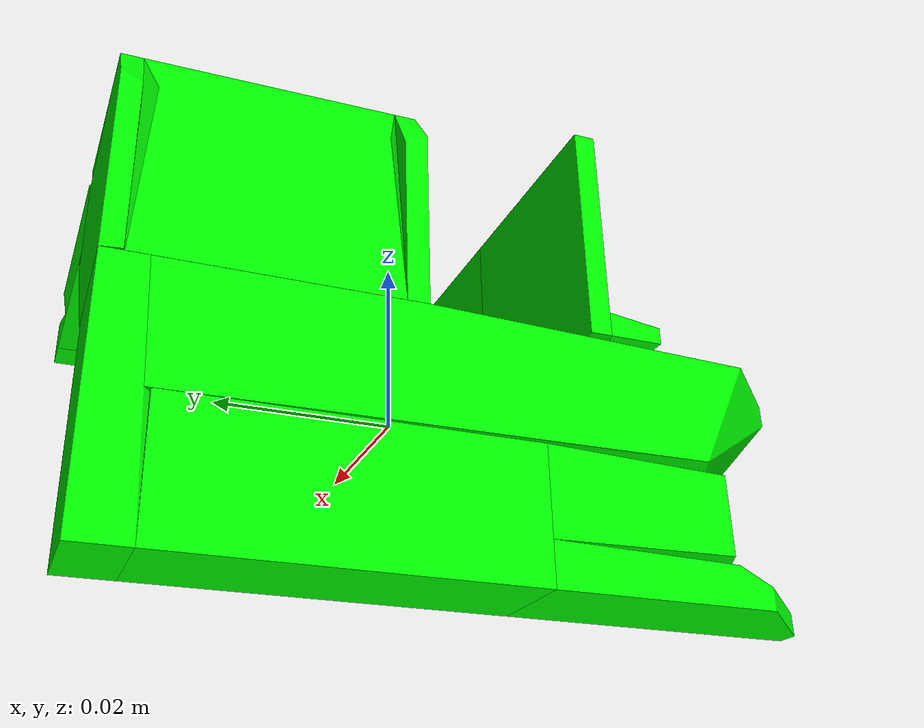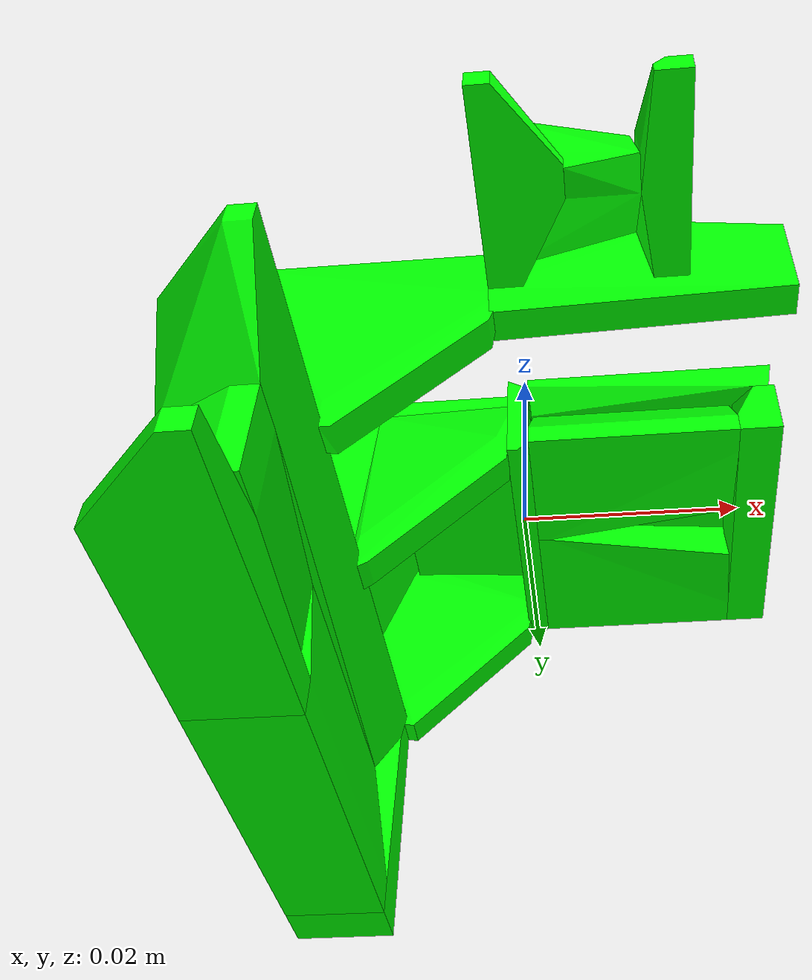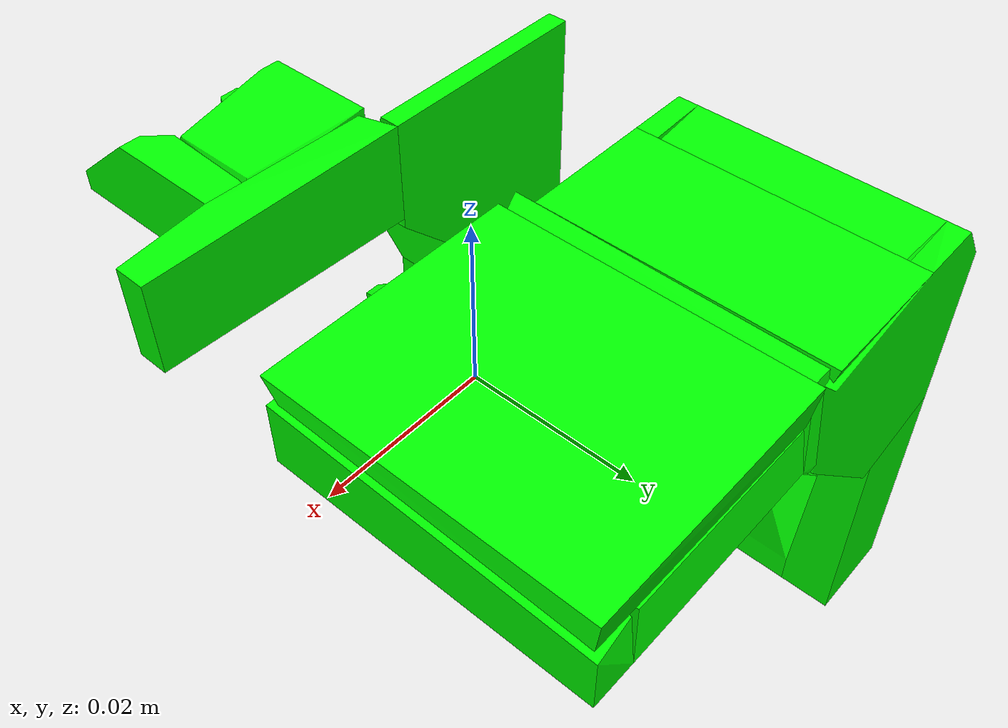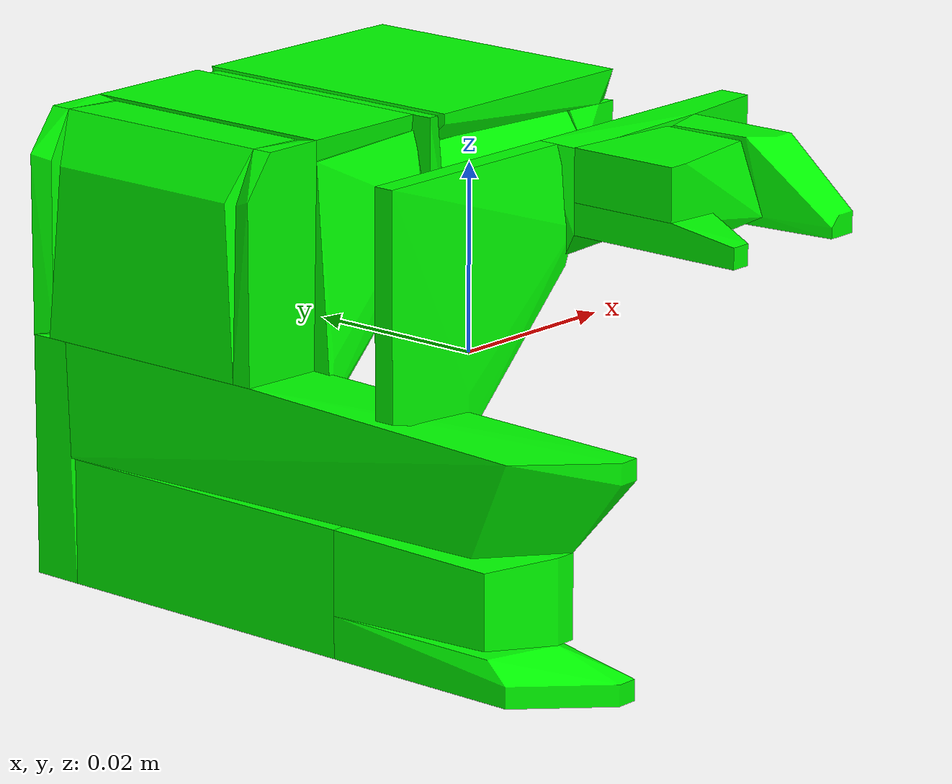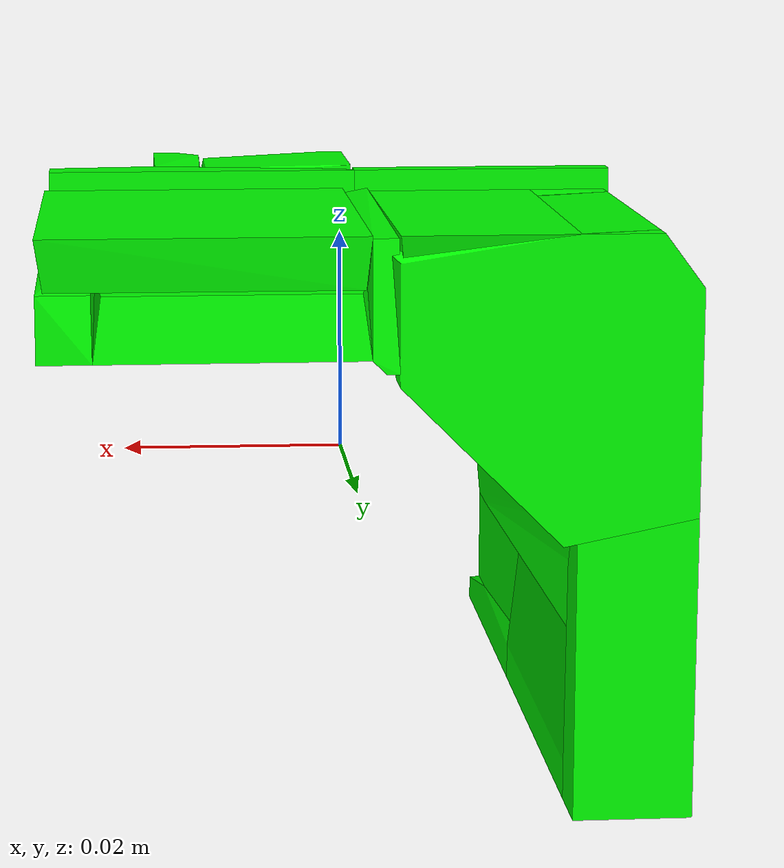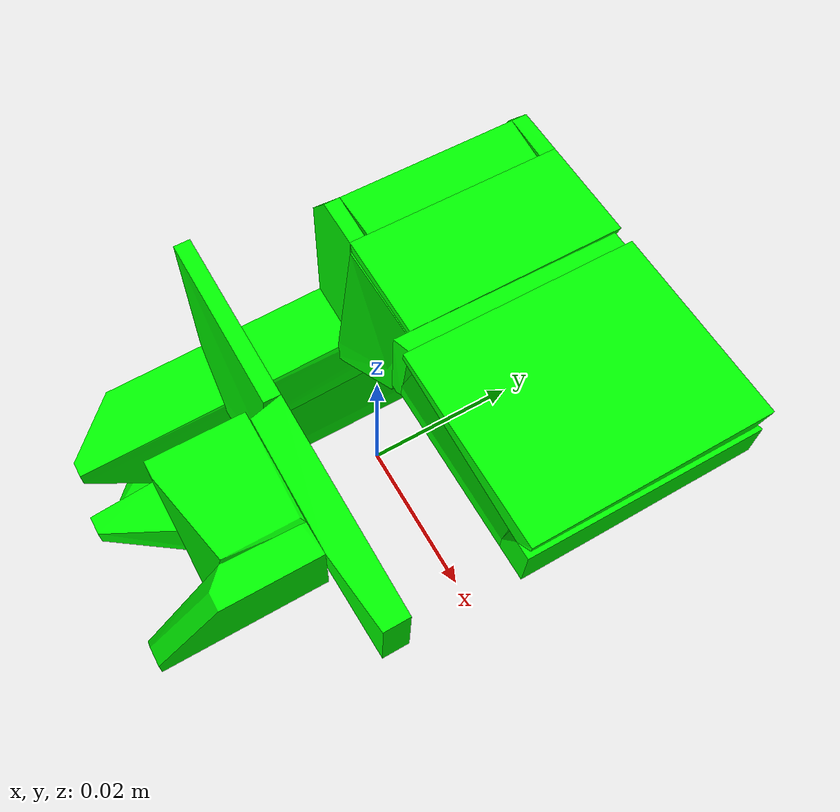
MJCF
<mujoco model="shapenet4-16">
  <asset>
    <mesh file="meshes/shapenet4-16/shapenet4-16_0.stl" name="shapenet4-16_0" scale="0.1 0.1 0.1"/>
    <mesh file="meshes/shapenet4-16/shapenet4-16_1.stl" name="shapenet4-16_1" scale="0.1 0.1 0.1"/>
    <mesh file="meshes/shapenet4-16/shapenet4-16_2.stl" name="shapenet4-16_2" scale="0.1 0.1 0.1"/>
    <mesh file="meshes/shapenet4-16/shapenet4-16_3.stl" name="shapenet4-16_3" scale="0.1 0.1 0.1"/>
    <mesh file="meshes/shapenet4-16/shapenet4-16_4.stl" name="shapenet4-16_4" scale="0.1 0.1 0.1"/>
    <mesh file="meshes/shapenet4-16/shapenet4-16_5.stl" name="shapenet4-16_5" scale="0.1 0.1 0.1"/>
    <mesh file="meshes/shapenet4-16/shapenet4-16_6.stl" name="shapenet4-16_6" scale="0.1 0.1 0.1"/>
    <mesh file="meshes/shapenet4-16/shapenet4-16_7.stl" name="shapenet4-16_7" scale="0.1 0.1 0.1"/>
    <mesh file="meshes/shapenet4-16/shapenet4-16_8.stl" name="shapenet4-16_8" scale="0.1 0.1 0.1"/>
    <mesh file="meshes/shapenet4-16/shapenet4-16_9.stl" name="shapenet4-16_9" scale="0.1 0.1 0.1"/>
    <mesh file="meshes/shapenet4-16/shapenet4-16_10.stl" name="shapenet4-16_10" scale="0.1 0.1 0.1"/>
    <mesh file="meshes/shapenet4-16/shapenet4-16_11.stl" name="shapenet4-16_11" scale="0.1 0.1 0.1"/>
    <mesh file="meshes/shapenet4-16/shapenet4-16_12.stl" name="shapenet4-16_12" scale="0.1 0.1 0.1"/>
    <mesh file="meshes/shapenet4-16/shapenet4-16_13.stl" name="shapenet4-16_13" scale="0.1 0.1 0.1"/>
    <mesh file="meshes/shapenet4-16/shapenet4-16_14.stl" name="shapenet4-16_14" scale="0.1 0.1 0.1"/>
    <mesh file="meshes/shapenet4-16/shapenet4-16_15.stl" name="shapenet4-16_15" scale="0.1 0.1 0.1"/>
    <mesh file="meshes/shapenet4-16/shapenet4-16_16.stl" name="shapenet4-16_16" scale="0.1 0.1 0.1"/>
    <mesh file="meshes/shapenet4-16/shapenet4-16_17.stl" name="shapenet4-16_17" scale="0.1 0.1 0.1"/>
    <mesh file="meshes/shapenet4-16/shapenet4-16_18.stl" name="shapenet4-16_18" scale="0.1 0.1 0.1"/>
    <mesh file="meshes/shapenet4-16/shapenet4-16_19.stl" name="shapenet4-16_19" scale="0.1 0.1 0.1"/>
  </asset>
  <worldbody>
    <body>
      <body name="collision">
        <geom pos="0 0 0" mesh="shapenet4-16_0" type="mesh" solimp="0.998 0.998 0.001" solref="0.001 1" density="100" friction="0.95 0.3 0.1" rgba="0 1 0 1" group="1" condim="4"/>
        <geom pos="0 0 0" mesh="shapenet4-16_1" type="mesh" solimp="0.998 0.998 0.001" solref="0.001 1" density="100" friction="0.95 0.3 0.1" rgba="0 1 0 1" group="1" condim="4"/>
        <geom pos="0 0 0" mesh="shapenet4-16_2" type="mesh" solimp="0.998 0.998 0.001" solref="0.001 1" density="100" friction="0.95 0.3 0.1" rgba="0 1 0 1" group="1" condim="4"/>
        <geom pos="0 0 0" mesh="shapenet4-16_3" type="mesh" solimp="0.998 0.998 0.001" solref="0.001 1" density="100" friction="0.95 0.3 0.1" rgba="0 1 0 1" group="1" condim="4"/>
        <geom pos="0 0 0" mesh="shapenet4-16_4" type="mesh" solimp="0.998 0.998 0.001" solref="0.001 1" density="100" friction="0.95 0.3 0.1" rgba="0 1 0 1" group="1" condim="4"/>
        <geom pos="0 0 0" mesh="shapenet4-16_5" type="mesh" solimp="0.998 0.998 0.001" solref="0.001 1" density="100" friction="0.95 0.3 0.1" rgba="0 1 0 1" group="1" condim="4"/>
        <geom pos="0 0 0" mesh="shapenet4-16_6" type="mesh" solimp="0.998 0.998 0.001" solref="0.001 1" density="100" friction="0.95 0.3 0.1" rgba="0 1 0 1" group="1" condim="4"/>
        <geom pos="0 0 0" mesh="shapenet4-16_7" type="mesh" solimp="0.998 0.998 0.001" solref="0.001 1" density="100" friction="0.95 0.3 0.1" rgba="0 1 0 1" group="1" condim="4"/>
        <geom pos="0 0 0" mesh="shapenet4-16_8" type="mesh" solimp="0.998 0.998 0.001" solref="0.001 1" density="100" friction="0.95 0.3 0.1" rgba="0 1 0 1" group="1" condim="4"/>
        <geom pos="0 0 0" mesh="shapenet4-16_9" type="mesh" solimp="0.998 0.998 0.001" solref="0.001 1" density="100" friction="0.95 0.3 0.1" rgba="0 1 0 1" group="1" condim="4"/>
        <geom pos="0 0 0" mesh="shapenet4-16_10" type="mesh" solimp="0.998 0.998 0.001" solref="0.001 1" density="100" friction="0.95 0.3 0.1" rgba="0 1 0 1" group="1" condim="4"/>
        <geom pos="0 0 0" mesh="shapenet4-16_11" type="mesh" solimp="0.998 0.998 0.001" solref="0.001 1" density="100" friction="0.95 0.3 0.1" rgba="0 1 0 1" group="1" condim="4"/>
        <geom pos="0 0 0" mesh="shapenet4-16_12" type="mesh" solimp="0.998 0.998 0.001" solref="0.001 1" density="100" friction="0.95 0.3 0.1" rgba="0 1 0 1" group="1" condim="4"/>
        <geom pos="0 0 0" mesh="shapenet4-16_13" type="mesh" solimp="0.998 0.998 0.001" solref="0.001 1" density="100" friction="0.95 0.3 0.1" rgba="0 1 0 1" group="1" condim="4"/>
        <geom pos="0 0 0" mesh="shapenet4-16_14" type="mesh" solimp="0.998 0.998 0.001" solref="0.001 1" density="100" friction="0.95 0.3 0.1" rgba="0 1 0 1" group="1" condim="4"/>
        <geom pos="0 0 0" mesh="shapenet4-16_15" type="mesh" solimp="0.998 0.998 0.001" solref="0.001 1" density="100" friction="0.95 0.3 0.1" rgba="0 1 0 1" group="1" condim="4"/>
        <geom pos="0 0 0" mesh="shapenet4-16_16" type="mesh" solimp="0.998 0.998 0.001" solref="0.001 1" density="100" friction="0.95 0.3 0.1" rgba="0 1 0 1" group="1" condim="4"/>
        <geom pos="0 0 0" mesh="shapenet4-16_17" type="mesh" solimp="0.998 0.998 0.001" solref="0.001 1" density="100" friction="0.95 0.3 0.1" rgba="0 1 0 1" group="1" condim="4"/>
        <geom pos="0 0 0" mesh="shapenet4-16_18" type="mesh" solimp="0.998 0.998 0.001" solref="0.001 1" density="100" friction="0.95 0.3 0.1" rgba="0 1 0 1" group="1" condim="4"/>
        <geom pos="0 0 0" mesh="shapenet4-16_19" type="mesh" solimp="0.998 0.998 0.001" solref="0.001 1" density="100" friction="0.95 0.3 0.1" rgba="0 1 0 1" group="1" condim="4"/>
      </body>
      <body name="visual">
        <geom pos="0 0 0" mesh="shapenet4-16_0" type="mesh" rgba="0 1 0 1" conaffinity="0" contype="0" group="0" mass="0.0001"/>
        <geom pos="0 0 0" mesh="shapenet4-16_1" type="mesh" rgba="0 1 0 1" conaffinity="0" contype="0" group="0" mass="0.0001"/>
        <geom pos="0 0 0" mesh="shapenet4-16_2" type="mesh" rgba="0 1 0 1" conaffinity="0" contype="0" group="0" mass="0.0001"/>
        <geom pos="0 0 0" mesh="shapenet4-16_3" type="mesh" rgba="0 1 0 1" conaffinity="0" contype="0" group="0" mass="0.0001"/>
        <geom pos="0 0 0" mesh="shapenet4-16_4" type="mesh" rgba="0 1 0 1" conaffinity="0" contype="0" group="0" mass="0.0001"/>
        <geom pos="0 0 0" mesh="shapenet4-16_5" type="mesh" rgba="0 1 0 1" conaffinity="0" contype="0" group="0" mass="0.0001"/>
        <geom pos="0 0 0" mesh="shapenet4-16_6" type="mesh" rgba="0 1 0 1" conaffinity="0" contype="0" group="0" mass="0.0001"/>
        <geom pos="0 0 0" mesh="shapenet4-16_7" type="mesh" rgba="0 1 0 1" conaffinity="0" contype="0" group="0" mass="0.0001"/>
        <geom pos="0 0 0" mesh="shapenet4-16_8" type="mesh" rgba="0 1 0 1" conaffinity="0" contype="0" group="0" mass="0.0001"/>
        <geom pos="0 0 0" mesh="shapenet4-16_9" type="mesh" rgba="0 1 0 1" conaffinity="0" contype="0" group="0" mass="0.0001"/>
        <geom pos="0 0 0" mesh="shapenet4-16_10" type="mesh" rgba="0 1 0 1" conaffinity="0" contype="0" group="0" mass="0.0001"/>
        <geom pos="0 0 0" mesh="shapenet4-16_11" type="mesh" rgba="0 1 0 1" conaffinity="0" contype="0" group="0" mass="0.0001"/>
        <geom pos="0 0 0" mesh="shapenet4-16_12" type="mesh" rgba="0 1 0 1" conaffinity="0" contype="0" group="0" mass="0.0001"/>
        <geom pos="0 0 0" mesh="shapenet4-16_13" type="mesh" rgba="0 1 0 1" conaffinity="0" contype="0" group="0" mass="0.0001"/>
        <geom pos="0 0 0" mesh="shapenet4-16_14" type="mesh" rgba="0 1 0 1" conaffinity="0" contype="0" group="0" mass="0.0001"/>
        <geom pos="0 0 0" mesh="shapenet4-16_15" type="mesh" rgba="0 1 0 1" conaffinity="0" contype="0" group="0" mass="0.0001"/>
        <geom pos="0 0 0" mesh="shapenet4-16_16" type="mesh" rgba="0 1 0 1" conaffinity="0" contype="0" group="0" mass="0.0001"/>
        <geom pos="0 0 0" mesh="shapenet4-16_17" type="mesh" rgba="0 1 0 1" conaffinity="0" contype="0" group="0" mass="0.0001"/>
        <geom pos="0 0 0" mesh="shapenet4-16_18" type="mesh" rgba="0 1 0 1" conaffinity="0" contype="0" group="0" mass="0.0001"/>
        <geom pos="0 0 0" mesh="shapenet4-16_19" type="mesh" rgba="0 1 0 1" conaffinity="0" contype="0" group="0" mass="0.0001"/>
      </body>
      <site rgba="0 0 0 0" size="0.005" pos="0 0 -0.06" name="bottom_site"/>
      <site rgba="0 0 0 0" size="0.005" pos="0 0 0.04" name="top_site"/>
      <site rgba="0 0 0 0" size="0.005" pos="0.025 0.025 0" name="horizontal_radius_site"/>
    </body>
  </worldbody>
</mujoco>
